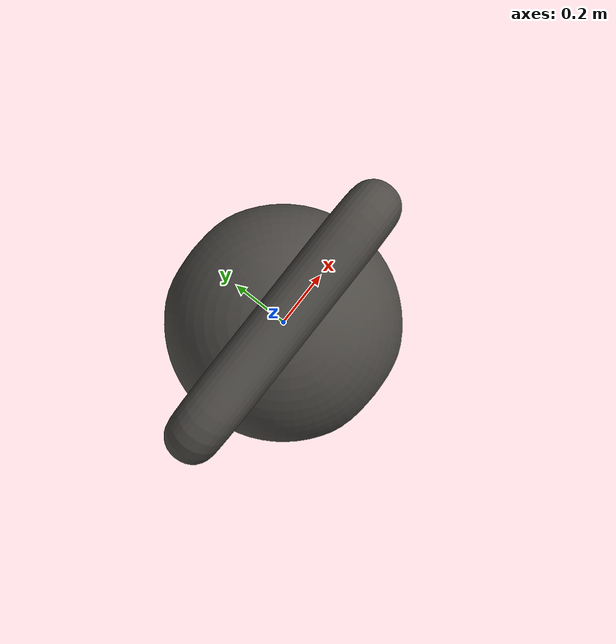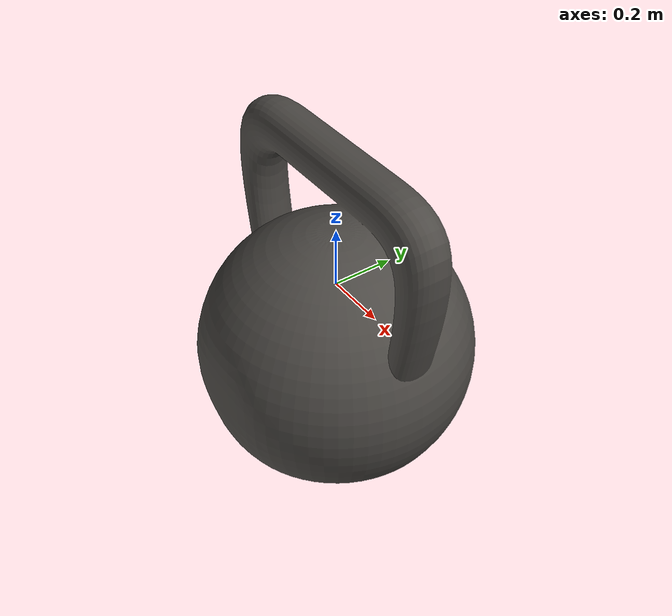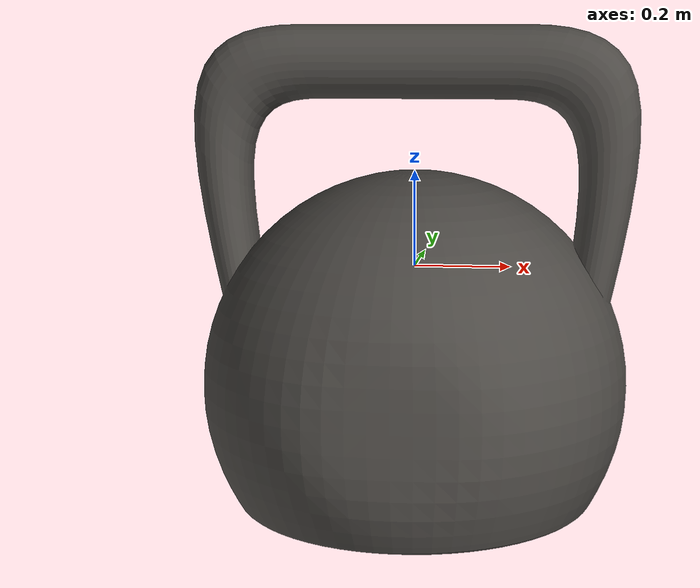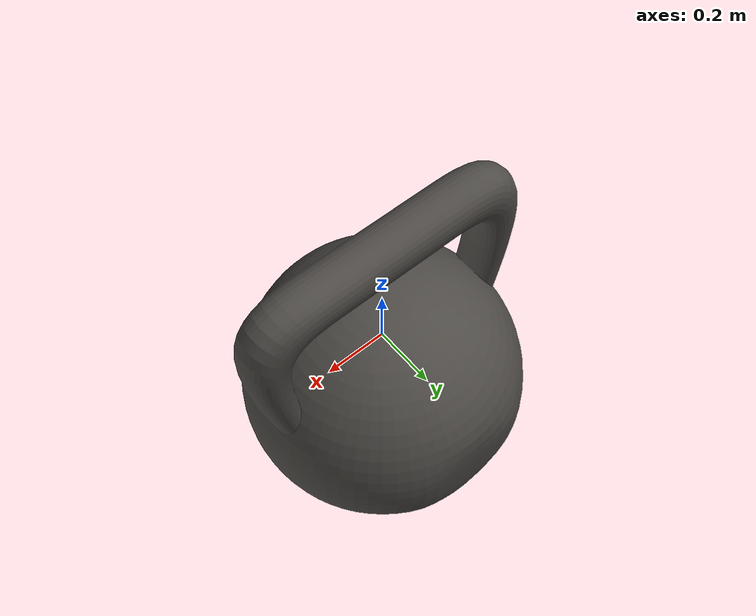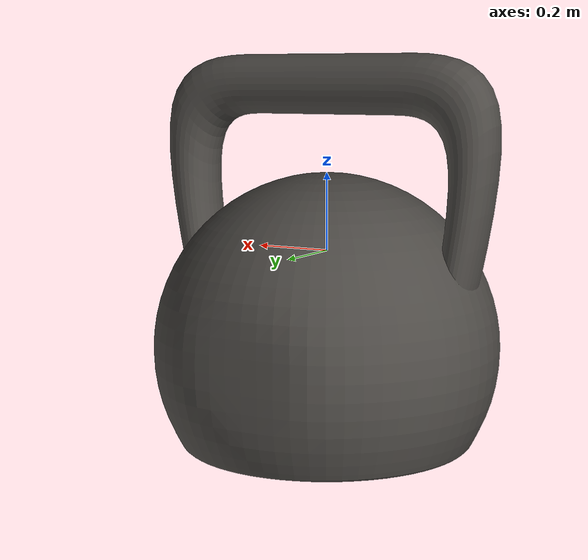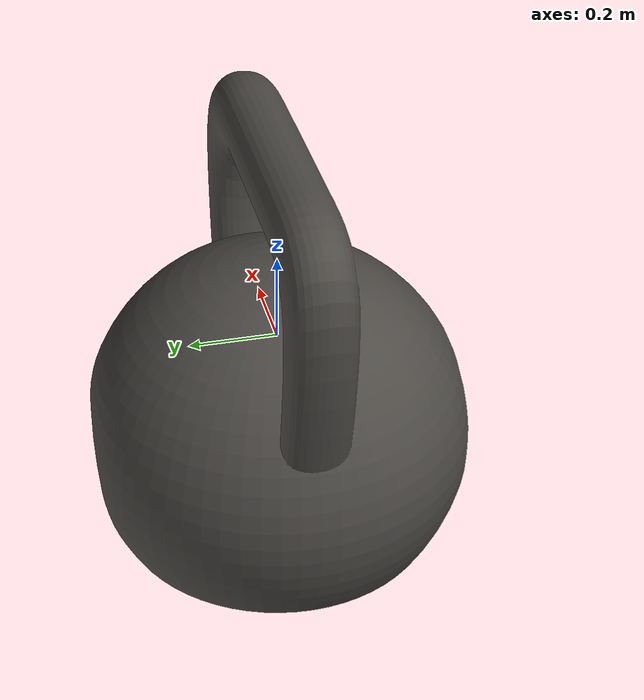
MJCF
<mujoco model="ImageToStl.com_uploads_files_2783955_kettlebells">
  <asset>
    <!-- 🔹 Base Color Texture -->
    <texture name="tex_default"
             type="2d"
             file="visual/DefaultMaterial_combined.png" />

    <!-- 🔹 Material using both textures -->
  <material name="material_0"
              texture="tex_default"
              reflectance="0.5"
              specular="0.4"
              shininess="0.001"
              rgba="0.4 0.4 0.4 1.0"
              texrepeat="1 1"
              texuniform="false" />

  <mesh file="visual/model_normalized_0.obj" name="model_normalized_0_vis" scale="1.0 1.0 1.0" /><mesh file="collision/model_normalized_collision_22.obj" name="model_normalized_collision_22._coll" scale="1.0 1.0 1.0" /><mesh file="collision/model_normalized_collision_4.obj" name="model_normalized_collision_4._coll" scale="1.0 1.0 1.0" /><mesh file="collision/model_normalized_collision_27.obj" name="model_normalized_collision_27._coll" scale="1.0 1.0 1.0" /><mesh file="collision/model_normalized_collision_6.obj" name="model_normalized_collision_6._coll" scale="1.0 1.0 1.0" /><mesh file="collision/model_normalized_collision_25.obj" name="model_normalized_collision_25._coll" scale="1.0 1.0 1.0" /><mesh file="collision/model_normalized_collision_26.obj" name="model_normalized_collision_26._coll" scale="1.0 1.0 1.0" /><mesh file="collision/model_normalized_collision_29.obj" name="model_normalized_collision_29._coll" scale="1.0 1.0 1.0" /><mesh file="collision/model_normalized_collision_19.obj" name="model_normalized_collision_19._coll" scale="1.0 1.0 1.0" /><mesh file="collision/model_normalized_collision_12.obj" name="model_normalized_collision_12._coll" scale="1.0 1.0 1.0" /><mesh file="collision/model_normalized_collision_17.obj" name="model_normalized_collision_17._coll" scale="1.0 1.0 1.0" /><mesh file="collision/model_normalized_collision_20.obj" name="model_normalized_collision_20._coll" scale="1.0 1.0 1.0" /><mesh file="collision/model_normalized_collision_14.obj" name="model_normalized_collision_14._coll" scale="1.0 1.0 1.0" /><mesh file="collision/model_normalized_collision_18.obj" name="model_normalized_collision_18._coll" scale="1.0 1.0 1.0" /><mesh file="collision/model_normalized_collision_15.obj" name="model_normalized_collision_15._coll" scale="1.0 1.0 1.0" /><mesh file="collision/model_normalized_collision_30.obj" name="model_normalized_collision_30._coll" scale="1.0 1.0 1.0" /><mesh file="collision/model_normalized_collision_31.obj" name="model_normalized_collision_31._coll" scale="1.0 1.0 1.0" /><mesh file="collision/model_normalized_collision_23.obj" name="model_normalized_collision_23._coll" scale="1.0 1.0 1.0" /><mesh file="collision/model_normalized_collision_28.obj" name="model_normalized_collision_28._coll" scale="1.0 1.0 1.0" /><mesh file="collision/model_normalized_collision_13.obj" name="model_normalized_collision_13._coll" scale="1.0 1.0 1.0" /><mesh file="collision/model_normalized_collision_5.obj" name="model_normalized_collision_5._coll" scale="1.0 1.0 1.0" /><mesh file="collision/model_normalized_collision_24.obj" name="model_normalized_collision_24._coll" scale="1.0 1.0 1.0" /><mesh file="collision/model_normalized_collision_16.obj" name="model_normalized_collision_16._coll" scale="1.0 1.0 1.0" /><mesh file="collision/model_normalized_collision_11.obj" name="model_normalized_collision_11._coll" scale="1.0 1.0 1.0" /><mesh file="collision/model_normalized_collision_1.obj" name="model_normalized_collision_1._coll" scale="1.0 1.0 1.0" /><mesh file="collision/model_normalized_collision_10.obj" name="model_normalized_collision_10._coll" scale="1.0 1.0 1.0" /><mesh file="collision/model_normalized_collision_21.obj" name="model_normalized_collision_21._coll" scale="1.0 1.0 1.0" /><mesh file="collision/model_normalized_collision_8.obj" name="model_normalized_collision_8._coll" scale="1.0 1.0 1.0" /><mesh file="collision/model_normalized_collision_7.obj" name="model_normalized_collision_7._coll" scale="1.0 1.0 1.0" /><mesh file="collision/model_normalized_collision_3.obj" name="model_normalized_collision_3._coll" scale="1.0 1.0 1.0" /><mesh file="collision/model_normalized_collision_2.obj" name="model_normalized_collision_2._coll" scale="1.0 1.0 1.0" /><mesh file="collision/model_normalized_collision_9.obj" name="model_normalized_collision_9._coll" scale="1.0 1.0 1.0" /><mesh file="collision/model_normalized_collision_0.obj" name="model_normalized_collision_0._coll" scale="1.0 1.0 1.0" />
  </asset>
  <worldbody>
    <body>
      <body name="object">
      <geom solimp="0.998 0.998 0.001" solref="0.001 1" density="100" friction="0.95 0.3 0.1" type="mesh" mesh="model_normalized_0_vis" conaffinity="0" contype="0" group="1" material="material_0" /><geom solimp="0.998 0.998 0.001" solref="0.001 1" density="100" friction="0.95 0.3 0.1" type="mesh" mesh="model_normalized_collision_22._coll" group="0" rgba="0.8 0.8 0.8 0.0" /><geom solimp="0.998 0.998 0.001" solref="0.001 1" density="100" friction="0.95 0.3 0.1" type="mesh" mesh="model_normalized_collision_4._coll" group="0" rgba="0.8 0.8 0.8 0.0" /><geom solimp="0.998 0.998 0.001" solref="0.001 1" density="100" friction="0.95 0.3 0.1" type="mesh" mesh="model_normalized_collision_27._coll" group="0" rgba="0.8 0.8 0.8 0.0" /><geom solimp="0.998 0.998 0.001" solref="0.001 1" density="100" friction="0.95 0.3 0.1" type="mesh" mesh="model_normalized_collision_6._coll" group="0" rgba="0.8 0.8 0.8 0.0" /><geom solimp="0.998 0.998 0.001" solref="0.001 1" density="100" friction="0.95 0.3 0.1" type="mesh" mesh="model_normalized_collision_25._coll" group="0" rgba="0.8 0.8 0.8 0.0" /><geom solimp="0.998 0.998 0.001" solref="0.001 1" density="100" friction="0.95 0.3 0.1" type="mesh" mesh="model_normalized_collision_26._coll" group="0" rgba="0.8 0.8 0.8 0.0" /><geom solimp="0.998 0.998 0.001" solref="0.001 1" density="100" friction="0.95 0.3 0.1" type="mesh" mesh="model_normalized_collision_29._coll" group="0" rgba="0.8 0.8 0.8 0.0" /><geom solimp="0.998 0.998 0.001" solref="0.001 1" density="100" friction="0.95 0.3 0.1" type="mesh" mesh="model_normalized_collision_19._coll" group="0" rgba="0.8 0.8 0.8 0.0" /><geom solimp="0.998 0.998 0.001" solref="0.001 1" density="100" friction="0.95 0.3 0.1" type="mesh" mesh="model_normalized_collision_12._coll" group="0" rgba="0.8 0.8 0.8 0.0" /><geom solimp="0.998 0.998 0.001" solref="0.001 1" density="100" friction="0.95 0.3 0.1" type="mesh" mesh="model_normalized_collision_17._coll" group="0" rgba="0.8 0.8 0.8 0.0" /><geom solimp="0.998 0.998 0.001" solref="0.001 1" density="100" friction="0.95 0.3 0.1" type="mesh" mesh="model_normalized_collision_20._coll" group="0" rgba="0.8 0.8 0.8 0.0" /><geom solimp="0.998 0.998 0.001" solref="0.001 1" density="100" friction="0.95 0.3 0.1" type="mesh" mesh="model_normalized_collision_14._coll" group="0" rgba="0.8 0.8 0.8 0.0" /><geom solimp="0.998 0.998 0.001" solref="0.001 1" density="100" friction="0.95 0.3 0.1" type="mesh" mesh="model_normalized_collision_18._coll" group="0" rgba="0.8 0.8 0.8 0.0" /><geom solimp="0.998 0.998 0.001" solref="0.001 1" density="100" friction="0.95 0.3 0.1" type="mesh" mesh="model_normalized_collision_15._coll" group="0" rgba="0.8 0.8 0.8 0.0" /><geom solimp="0.998 0.998 0.001" solref="0.001 1" density="100" friction="0.95 0.3 0.1" type="mesh" mesh="model_normalized_collision_30._coll" group="0" rgba="0.8 0.8 0.8 0.0" /><geom solimp="0.998 0.998 0.001" solref="0.001 1" density="100" friction="0.95 0.3 0.1" type="mesh" mesh="model_normalized_collision_31._coll" group="0" rgba="0.8 0.8 0.8 0.0" /><geom solimp="0.998 0.998 0.001" solref="0.001 1" density="100" friction="0.95 0.3 0.1" type="mesh" mesh="model_normalized_collision_23._coll" group="0" rgba="0.8 0.8 0.8 0.0" /><geom solimp="0.998 0.998 0.001" solref="0.001 1" density="100" friction="0.95 0.3 0.1" type="mesh" mesh="model_normalized_collision_28._coll" group="0" rgba="0.8 0.8 0.8 0.0" /><geom solimp="0.998 0.998 0.001" solref="0.001 1" density="100" friction="0.95 0.3 0.1" type="mesh" mesh="model_normalized_collision_13._coll" group="0" rgba="0.8 0.8 0.8 0.0" /><geom solimp="0.998 0.998 0.001" solref="0.001 1" density="100" friction="0.95 0.3 0.1" type="mesh" mesh="model_normalized_collision_5._coll" group="0" rgba="0.8 0.8 0.8 0.0" /><geom solimp="0.998 0.998 0.001" solref="0.001 1" density="100" friction="0.95 0.3 0.1" type="mesh" mesh="model_normalized_collision_24._coll" group="0" rgba="0.8 0.8 0.8 0.0" /><geom solimp="0.998 0.998 0.001" solref="0.001 1" density="100" friction="0.95 0.3 0.1" type="mesh" mesh="model_normalized_collision_16._coll" group="0" rgba="0.8 0.8 0.8 0.0" /><geom solimp="0.998 0.998 0.001" solref="0.001 1" density="100" friction="0.95 0.3 0.1" type="mesh" mesh="model_normalized_collision_11._coll" group="0" rgba="0.8 0.8 0.8 0.0" /><geom solimp="0.998 0.998 0.001" solref="0.001 1" density="100" friction="0.95 0.3 0.1" type="mesh" mesh="model_normalized_collision_1._coll" group="0" rgba="0.8 0.8 0.8 0.0" /><geom solimp="0.998 0.998 0.001" solref="0.001 1" density="100" friction="0.95 0.3 0.1" type="mesh" mesh="model_normalized_collision_10._coll" group="0" rgba="0.8 0.8 0.8 0.0" /><geom solimp="0.998 0.998 0.001" solref="0.001 1" density="100" friction="0.95 0.3 0.1" type="mesh" mesh="model_normalized_collision_21._coll" group="0" rgba="0.8 0.8 0.8 0.0" /><geom solimp="0.998 0.998 0.001" solref="0.001 1" density="100" friction="0.95 0.3 0.1" type="mesh" mesh="model_normalized_collision_8._coll" group="0" rgba="0.8 0.8 0.8 0.0" /><geom solimp="0.998 0.998 0.001" solref="0.001 1" density="100" friction="0.95 0.3 0.1" type="mesh" mesh="model_normalized_collision_7._coll" group="0" rgba="0.8 0.8 0.8 0.0" /><geom solimp="0.998 0.998 0.001" solref="0.001 1" density="100" friction="0.95 0.3 0.1" type="mesh" mesh="model_normalized_collision_3._coll" group="0" rgba="0.8 0.8 0.8 0.0" /><geom solimp="0.998 0.998 0.001" solref="0.001 1" density="100" friction="0.95 0.3 0.1" type="mesh" mesh="model_normalized_collision_2._coll" group="0" rgba="0.8 0.8 0.8 0.0" /><geom solimp="0.998 0.998 0.001" solref="0.001 1" density="100" friction="0.95 0.3 0.1" type="mesh" mesh="model_normalized_collision_9._coll" group="0" rgba="0.8 0.8 0.8 0.0" /><geom solimp="0.998 0.998 0.001" solref="0.001 1" density="100" friction="0.95 0.3 0.1" type="mesh" mesh="model_normalized_collision_0._coll" group="0" rgba="0.8 0.8 0.8 0.0" /></body>
      <site rgba="0 0 0 0" size="0.005" pos="-0.0011847708133211343 -0.0018849299782603968 -0.507575758629033" name="bottom_site" />
      <site rgba="0 0 0 0" size="0.005" pos="-0.0011847708133211343 -0.0018849299782603968 0.5075757581776292" name="top_site" />
      <site rgba="0 0 0 0" size="0.005" pos="0.46851219963598806 0.4299332527427288 -2.2570184610160027e-10" name="horizontal_radius_site" />
    </body>
  </worldbody>
</mujoco>
